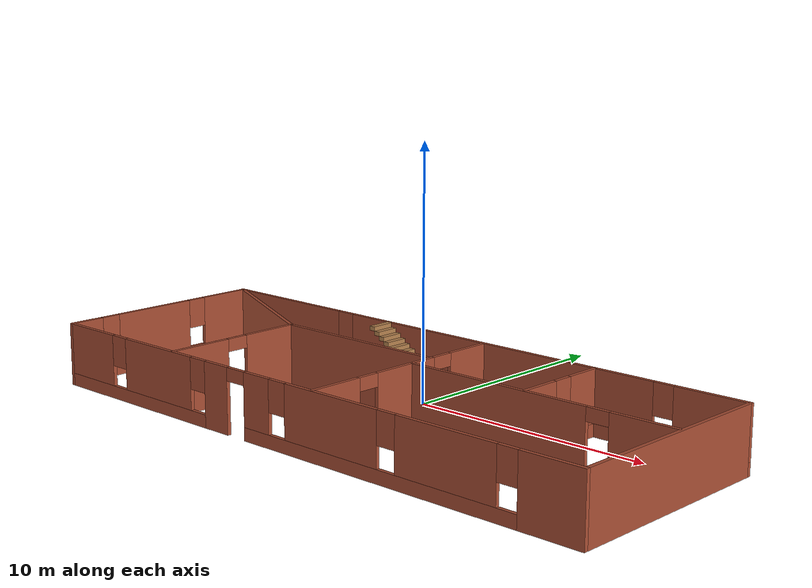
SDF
<?xml version='1.0'?>
<sdf version='1.6'>
  <model name='house'>
    <pose frame=''>0.670228 -3.17375 0 0 -0 0</pose>
    <link name='Stairs_0'>
      <visual name='Stairs_0_Visual_0'>
        <pose frame=''>-0.047967 3.88961 0.083333 0 -0 -1.5708</pose>
        <geometry>
          <box>
            <size>1 0.252106 0.166667</size>
          </box>
        </geometry>
        <material>
          <script>
            <uri>file://media/materials/scripts/gazebo.material</uri>
            <name>Gazebo/Wood</name>
          </script>
          <ambient>1 1 1 1</ambient>
        </material>
        <meta>
          <layer>0</layer>
        </meta>
      </visual>
      <collision name='Stairs_0_Collision_0'>
        <geometry>
          <box>
            <size>1 0.252106 0.166667</size>
          </box>
        </geometry>
        <pose frame=''>-0.047967 3.88961 0.083333 0 -0 -1.5708</pose>
      </collision>
      <visual name='Stairs_0_Visual_1'>
        <pose frame=''>-0.300073 3.88961 0.25 0 -0 -1.5708</pose>
        <geometry>
          <box>
            <size>1 0.252106 0.166667</size>
          </box>
        </geometry>
        <material>
          <script>
            <uri>file://media/materials/scripts/gazebo.material</uri>
            <name>Gazebo/Wood</name>
          </script>
          <ambient>1 1 1 1</ambient>
        </material>
        <meta>
          <layer>0</layer>
        </meta>
      </visual>
      <collision name='Stairs_0_Collision_1'>
        <geometry>
          <box>
            <size>1 0.252106 0.166667</size>
          </box>
        </geometry>
        <pose frame=''>-0.300073 3.88961 0.25 0 -0 -1.5708</pose>
      </collision>
      <visual name='Stairs_0_Visual_2'>
        <pose frame=''>-0.552179 3.88961 0.416667 0 -0 -1.5708</pose>
        <geometry>
          <box>
            <size>1 0.252106 0.166667</size>
          </box>
        </geometry>
        <material>
          <script>
            <uri>file://media/materials/scripts/gazebo.material</uri>
            <name>Gazebo/Wood</name>
          </script>
          <ambient>1 1 1 1</ambient>
        </material>
        <meta>
          <layer>0</layer>
        </meta>
      </visual>
      <collision name='Stairs_0_Collision_2'>
        <geometry>
          <box>
            <size>1 0.252106 0.166667</size>
          </box>
        </geometry>
        <pose frame=''>-0.552179 3.88961 0.416667 0 -0 -1.5708</pose>
      </collision>
      <visual name='Stairs_0_Visual_3'>
        <pose frame=''>-0.804285 3.88961 0.583333 0 -0 -1.5708</pose>
        <geometry>
          <box>
            <size>1 0.252106 0.166667</size>
          </box>
        </geometry>
        <material>
          <script>
            <uri>file://media/materials/scripts/gazebo.material</uri>
            <name>Gazebo/Wood</name>
          </script>
          <ambient>1 1 1 1</ambient>
        </material>
        <meta>
          <layer>0</layer>
        </meta>
      </visual>
      <collision name='Stairs_0_Collision_3'>
        <geometry>
          <box>
            <size>1 0.252106 0.166667</size>
          </box>
        </geometry>
        <pose frame=''>-0.804285 3.88961 0.583333 0 -0 -1.5708</pose>
      </collision>
      <visual name='Stairs_0_Visual_4'>
        <pose frame=''>-1.05639 3.88961 0.75 0 -0 -1.5708</pose>
        <geometry>
          <box>
            <size>1 0.252106 0.166667</size>
          </box>
        </geometry>
        <material>
          <script>
            <uri>file://media/materials/scripts/gazebo.material</uri>
            <name>Gazebo/Wood</name>
          </script>
          <ambient>1 1 1 1</ambient>
        </material>
        <meta>
          <layer>0</layer>
        </meta>
      </visual>
      <collision name='Stairs_0_Collision_4'>
        <geometry>
          <box>
            <size>1 0.252106 0.166667</size>
          </box>
        </geometry>
        <pose frame=''>-1.05639 3.88961 0.75 0 -0 -1.5708</pose>
      </collision>
      <visual name='Stairs_0_Visual_5'>
        <pose frame=''>-1.3085 3.88961 0.916667 0 -0 -1.5708</pose>
        <geometry>
          <box>
            <size>1 0.252106 0.166667</size>
          </box>
        </geometry>
        <material>
          <script>
            <uri>file://media/materials/scripts/gazebo.material</uri>
            <name>Gazebo/Wood</name>
          </script>
          <ambient>1 1 1 1</ambient>
        </material>
        <meta>
          <layer>0</layer>
        </meta>
      </visual>
      <collision name='Stairs_0_Collision_5'>
        <geometry>
          <box>
            <size>1 0.252106 0.166667</size>
          </box>
        </geometry>
        <pose frame=''>-1.3085 3.88961 0.916667 0 -0 -1.5708</pose>
      </collision>
      <visual name='Stairs_0_Visual_6'>
        <pose frame=''>-1.5606 3.88961 1.08333 0 -0 -1.5708</pose>
        <geometry>
          <box>
            <size>1 0.252106 0.166667</size>
          </box>
        </geometry>
        <material>
          <script>
            <uri>file://media/materials/scripts/gazebo.material</uri>
            <name>Gazebo/Wood</name>
          </script>
          <ambient>1 1 1 1</ambient>
        </material>
        <meta>
          <layer>0</layer>
        </meta>
      </visual>
      <collision name='Stairs_0_Collision_6'>
        <geometry>
          <box>
            <size>1 0.252106 0.166667</size>
          </box>
        </geometry>
        <pose frame=''>-1.5606 3.88961 1.08333 0 -0 -1.5708</pose>
      </collision>
      <visual name='Stairs_0_Visual_7'>
        <pose frame=''>-1.81271 3.88961 1.25 0 -0 -1.5708</pose>
        <geometry>
          <box>
            <size>1 0.252106 0.166667</size>
          </box>
        </geometry>
        <material>
          <script>
            <uri>file://media/materials/scripts/gazebo.material</uri>
            <name>Gazebo/Wood</name>
          </script>
          <ambient>1 1 1 1</ambient>
        </material>
        <meta>
          <layer>0</layer>
        </meta>
      </visual>
      <collision name='Stairs_0_Collision_7'>
        <geometry>
          <box>
            <size>1 0.252106 0.166667</size>
          </box>
        </geometry>
        <pose frame=''>-1.81271 3.88961 1.25 0 -0 -1.5708</pose>
      </collision>
      <visual name='Stairs_0_Visual_8'>
        <pose frame=''>-2.06482 3.88961 1.41667 0 -0 -1.5708</pose>
        <geometry>
          <box>
            <size>1 0.252106 0.166667</size>
          </box>
        </geometry>
        <material>
          <script>
            <uri>file://media/materials/scripts/gazebo.material</uri>
            <name>Gazebo/Wood</name>
          </script>
          <ambient>1 1 1 1</ambient>
        </material>
        <meta>
          <layer>0</layer>
        </meta>
      </visual>
      <collision name='Stairs_0_Collision_8'>
        <geometry>
          <box>
            <size>1 0.252106 0.166667</size>
          </box>
        </geometry>
        <pose frame=''>-2.06482 3.88961 1.41667 0 -0 -1.5708</pose>
      </collision>
      <visual name='Stairs_0_Visual_9'>
        <pose frame=''>-2.31692 3.88961 1.58333 0 -0 -1.5708</pose>
        <geometry>
          <box>
            <size>1 0.252106 0.166667</size>
          </box>
        </geometry>
        <material>
          <script>
            <uri>file://media/materials/scripts/gazebo.material</uri>
            <name>Gazebo/Wood</name>
          </script>
          <ambient>1 1 1 1</ambient>
        </material>
        <meta>
          <layer>0</layer>
        </meta>
      </visual>
      <collision name='Stairs_0_Collision_9'>
        <geometry>
          <box>
            <size>1 0.252106 0.166667</size>
          </box>
        </geometry>
        <pose frame=''>-2.31692 3.88961 1.58333 0 -0 -1.5708</pose>
      </collision>
      <visual name='Stairs_0_Visual_10'>
        <pose frame=''>-2.56903 3.88961 1.75 0 -0 -1.5708</pose>
        <geometry>
          <box>
            <size>1 0.252106 0.166667</size>
          </box>
        </geometry>
        <material>
          <script>
            <uri>file://media/materials/scripts/gazebo.material</uri>
            <name>Gazebo/Wood</name>
          </script>
          <ambient>1 1 1 1</ambient>
        </material>
        <meta>
          <layer>0</layer>
        </meta>
      </visual>
      <collision name='Stairs_0_Collision_10'>
        <geometry>
          <box>
            <size>1 0.252106 0.166667</size>
          </box>
        </geometry>
        <pose frame=''>-2.56903 3.88961 1.75 0 -0 -1.5708</pose>
      </collision>
      <visual name='Stairs_0_Visual_11'>
        <pose frame=''>-2.82113 3.88961 1.91667 0 -0 -1.5708</pose>
        <geometry>
          <box>
            <size>1 0.252106 0.166667</size>
          </box>
        </geometry>
        <material>
          <script>
            <uri>file://media/materials/scripts/gazebo.material</uri>
            <name>Gazebo/Wood</name>
          </script>
          <ambient>1 1 1 1</ambient>
        </material>
        <meta>
          <layer>0</layer>
        </meta>
      </visual>
      <collision name='Stairs_0_Collision_11'>
        <geometry>
          <box>
            <size>1 0.252106 0.166667</size>
          </box>
        </geometry>
        <pose frame=''>-2.82113 3.88961 1.91667 0 -0 -1.5708</pose>
      </collision>
      <visual name='Stairs_0_Visual_12'>
        <pose frame=''>-3.07324 3.88961 2.08333 0 -0 -1.5708</pose>
        <geometry>
          <box>
            <size>1 0.252106 0.166667</size>
          </box>
        </geometry>
        <material>
          <script>
            <uri>file://media/materials/scripts/gazebo.material</uri>
            <name>Gazebo/Wood</name>
          </script>
          <ambient>1 1 1 1</ambient>
        </material>
        <meta>
          <layer>0</layer>
        </meta>
      </visual>
      <collision name='Stairs_0_Collision_12'>
        <geometry>
          <box>
            <size>1 0.252106 0.166667</size>
          </box>
        </geometry>
        <pose frame=''>-3.07324 3.88961 2.08333 0 -0 -1.5708</pose>
      </collision>
      <visual name='Stairs_0_Visual_13'>
        <pose frame=''>-3.32535 3.88961 2.25 0 -0 -1.5708</pose>
        <geometry>
          <box>
            <size>1 0.252106 0.166667</size>
          </box>
        </geometry>
        <material>
          <script>
            <uri>file://media/materials/scripts/gazebo.material</uri>
            <name>Gazebo/Wood</name>
          </script>
          <ambient>1 1 1 1</ambient>
        </material>
        <meta>
          <layer>0</layer>
        </meta>
      </visual>
      <collision name='Stairs_0_Collision_13'>
        <geometry>
          <box>
            <size>1 0.252106 0.166667</size>
          </box>
        </geometry>
        <pose frame=''>-3.32535 3.88961 2.25 0 -0 -1.5708</pose>
      </collision>
      <visual name='Stairs_0_Visual_14'>
        <pose frame=''>-3.57745 3.88961 2.41667 0 -0 -1.5708</pose>
        <geometry>
          <box>
            <size>1 0.252106 0.166667</size>
          </box>
        </geometry>
        <material>
          <script>
            <uri>file://media/materials/scripts/gazebo.material</uri>
            <name>Gazebo/Wood</name>
          </script>
          <ambient>1 1 1 1</ambient>
        </material>
        <meta>
          <layer>0</layer>
        </meta>
      </visual>
      <collision name='Stairs_0_Collision_14'>
        <geometry>
          <box>
            <size>1 0.252106 0.166667</size>
          </box>
        </geometry>
        <pose frame=''>-3.57745 3.88961 2.41667 0 -0 -1.5708</pose>
      </collision>
    </link>
    <link name='Wall_0'>
      <pose frame=''>0.012438 4.41256 0 0 -0 0</pose>
      <visual name='Wall_0_Visual_0'>
        <pose frame=''>-9.46444 0 1.25 0 -0 0</pose>
        <geometry>
          <box>
            <size>6.07112 0.15 2.5</size>
          </box>
        </geometry>
        <material>
          <script>
            <uri>file://media/materials/scripts/gazebo.material</uri>
            <name>Gazebo/Bricks</name>
          </script>
          <ambient>1 0.764706 0.305882 1</ambient>
        </material>
        <meta>
          <layer>0</layer>
        </meta>
      </visual>
      <collision name='Wall_0_Collision_0'>
        <geometry>
          <box>
            <size>6.07112 0.15 2.5</size>
          </box>
        </geometry>
        <pose frame=''>-9.46444 0 1.25 0 -0 0</pose>
      </collision>
      <visual name='Wall_0_Visual_1'>
        <pose frame=''>3.03556 0 0.25 0 -0 0</pose>
        <geometry>
          <box>
            <size>18.9289 0.15 0.5</size>
          </box>
        </geometry>
        <material>
          <script>
            <uri>file://media/materials/scripts/gazebo.material</uri>
            <name>Gazebo/Bricks</name>
          </script>
          <ambient>1 0.764706 0.305882 1</ambient>
        </material>
        <meta>
          <layer>0</layer>
        </meta>
      </visual>
      <collision name='Wall_0_Collision_1'>
        <geometry>
          <box>
            <size>18.9289 0.15 0.5</size>
          </box>
        </geometry>
        <pose frame=''>3.03556 0 0.25 0 -0 0</pose>
      </collision>
      <visual name='Wall_0_Visual_2'>
        <pose frame=''>1.57405 0 1.5 0 -0 0</pose>
        <geometry>
          <box>
            <size>14.4059 0.15 2</size>
          </box>
        </geometry>
        <material>
          <script>
            <uri>file://media/materials/scripts/gazebo.material</uri>
            <name>Gazebo/Bricks</name>
          </script>
          <ambient>1 0.764706 0.305882 1</ambient>
        </material>
        <meta>
          <layer>0</layer>
        </meta>
      </visual>
      <collision name='Wall_0_Collision_2'>
        <geometry>
          <box>
            <size>14.4059 0.15 2</size>
          </box>
        </geometry>
        <pose frame=''>1.57405 0 1.5 0 -0 0</pose>
      </collision>
      <visual name='Wall_0_Visual_3'>
        <pose frame=''>11.0385 0 1.5 0 -0 0</pose>
        <geometry>
          <box>
            <size>2.92302 0.15 2</size>
          </box>
        </geometry>
        <material>
          <script>
            <uri>file://media/materials/scripts/gazebo.material</uri>
            <name>Gazebo/Bricks</name>
          </script>
          <ambient>1 0.764706 0.305882 1</ambient>
        </material>
        <meta>
          <layer>0</layer>
        </meta>
      </visual>
      <collision name='Wall_0_Collision_3'>
        <geometry>
          <box>
            <size>2.92302 0.15 2</size>
          </box>
        </geometry>
        <pose frame=''>11.0385 0 1.5 0 -0 0</pose>
      </collision>
      <visual name='Wall_0_Visual_4'>
        <pose frame=''>-6.02888 0 1.9 0 -0 0</pose>
        <geometry>
          <box>
            <size>0.8 0.15 1.2</size>
          </box>
        </geometry>
        <material>
          <script>
            <uri>file://media/materials/scripts/gazebo.material</uri>
            <name>Gazebo/Bricks</name>
          </script>
          <ambient>1 0.764706 0.305882 1</ambient>
        </material>
        <meta>
          <layer>0</layer>
        </meta>
      </visual>
      <collision name='Wall_0_Collision_4'>
        <geometry>
          <box>
            <size>0.8 0.15 1.2</size>
          </box>
        </geometry>
        <pose frame=''>-6.02888 0 1.9 0 -0 0</pose>
      </collision>
      <visual name='Wall_0_Visual_5'>
        <pose frame=''>9.17698 0 1.9 0 -0 0</pose>
        <geometry>
          <box>
            <size>0.8 0.15 1.2</size>
          </box>
        </geometry>
        <material>
          <script>
            <uri>file://media/materials/scripts/gazebo.material</uri>
            <name>Gazebo/Bricks</name>
          </script>
          <ambient>1 0.764706 0.305882 1</ambient>
        </material>
        <meta>
          <layer>0</layer>
        </meta>
      </visual>
      <collision name='Wall_0_Collision_5'>
        <geometry>
          <box>
            <size>0.8 0.15 1.2</size>
          </box>
        </geometry>
        <pose frame=''>9.17698 0 1.9 0 -0 0</pose>
      </collision>
    </link>
    <link name='Wall_1'>
      <collision name='Wall_1_Collision'>
        <geometry>
          <box>
            <size>9 0.15 2.5</size>
          </box>
        </geometry>
        <pose frame=''>0 0 1.25 0 -0 0</pose>
      </collision>
      <visual name='Wall_1_Visual'>
        <pose frame=''>0 0 1.25 0 -0 0</pose>
        <geometry>
          <box>
            <size>9 0.15 2.5</size>
          </box>
        </geometry>
        <material>
          <script>
            <uri>file://media/materials/scripts/gazebo.material</uri>
            <name>Gazebo/Bricks</name>
          </script>
          <ambient>0.996078 0.47451 0.0196078 1</ambient>
        </material>
        <meta>
          <layer>0</layer>
        </meta>
      </visual>
      <pose frame=''>12.4374 -0.012438 0 0 0 -1.5708</pose>
    </link>
    <link name='Wall_18'>
      <pose frame=''>6.31317 2.43553 0 0 -0 1.5708</pose>
      <visual name='Wall_18_Visual_0'>
        <pose frame=''>-1.15682 0 1.25 0 -0 0</pose>
        <geometry>
          <box>
            <size>1.68636 0.15 2.5</size>
          </box>
        </geometry>
        <material>
          <script>
            <uri>file://media/materials/scripts/gazebo.material</uri>
            <name>Gazebo/Bricks</name>
          </script>
          <ambient>1 0.764706 0.305882 1</ambient>
        </material>
        <meta>
          <layer>0</layer>
        </meta>
      </visual>
      <collision name='Wall_18_Collision_0'>
        <geometry>
          <box>
            <size>1.68636 0.15 2.5</size>
          </box>
        </geometry>
        <pose frame=''>-1.15682 0 1.25 0 -0 0</pose>
      </collision>
      <visual name='Wall_18_Visual_1'>
        <pose frame=''>0.843179 0 0.25 0 -0 0</pose>
        <geometry>
          <box>
            <size>2.31364 0.15 0.5</size>
          </box>
        </geometry>
        <material>
          <script>
            <uri>file://media/materials/scripts/gazebo.material</uri>
            <name>Gazebo/Bricks</name>
          </script>
          <ambient>1 0.764706 0.305882 1</ambient>
        </material>
        <meta>
          <layer>0</layer>
        </meta>
      </visual>
      <collision name='Wall_18_Collision_1'>
        <geometry>
          <box>
            <size>2.31364 0.15 0.5</size>
          </box>
        </geometry>
        <pose frame=''>0.843179 0 0.25 0 -0 0</pose>
      </collision>
      <visual name='Wall_18_Visual_2'>
        <pose frame=''>1.24318 0 1.5 0 -0 0</pose>
        <geometry>
          <box>
            <size>1.51364 0.15 2</size>
          </box>
        </geometry>
        <material>
          <script>
            <uri>file://media/materials/scripts/gazebo.material</uri>
            <name>Gazebo/Bricks</name>
          </script>
          <ambient>1 0.764706 0.305882 1</ambient>
        </material>
        <meta>
          <layer>0</layer>
        </meta>
      </visual>
      <collision name='Wall_18_Collision_2'>
        <geometry>
          <box>
            <size>1.51364 0.15 2</size>
          </box>
        </geometry>
        <pose frame=''>1.24318 0 1.5 0 -0 0</pose>
      </collision>
      <visual name='Wall_18_Visual_3'>
        <pose frame=''>0.086357 0 1.9 0 -0 0</pose>
        <geometry>
          <box>
            <size>0.8 0.15 1.2</size>
          </box>
        </geometry>
        <material>
          <script>
            <uri>file://media/materials/scripts/gazebo.material</uri>
            <name>Gazebo/Bricks</name>
          </script>
          <ambient>1 0.764706 0.305882 1</ambient>
        </material>
        <meta>
          <layer>0</layer>
        </meta>
      </visual>
      <collision name='Wall_18_Collision_3'>
        <geometry>
          <box>
            <size>0.8 0.15 1.2</size>
          </box>
        </geometry>
        <pose frame=''>0.086357 0 1.9 0 -0 0</pose>
      </collision>
    </link>
    <link name='Wall_2'>
      <pose frame=''>0.012438 -4.43744 0 0 -0 3.14159</pose>
      <visual name='Wall_2_Visual_0'>
        <pose frame=''>-11.2698 0 1.25 0 -0 0</pose>
        <geometry>
          <box>
            <size>2.46041 0.15 2.5</size>
          </box>
        </geometry>
        <material>
          <script>
            <uri>file://media/materials/scripts/gazebo.material</uri>
            <name>Gazebo/Bricks</name>
          </script>
          <ambient>0.996078 0.47451 0.0196078 1</ambient>
        </material>
        <meta>
          <layer>0</layer>
        </meta>
      </visual>
      <collision name='Wall_2_Collision_0'>
        <geometry>
          <box>
            <size>2.46041 0.15 2.5</size>
          </box>
        </geometry>
        <pose frame=''>-11.2698 0 1.25 0 -0 0</pose>
      </collision>
      <visual name='Wall_2_Visual_1'>
        <pose frame=''>3.6302 0 1.25 0 -0 0</pose>
        <geometry>
          <box>
            <size>1.2217 0.15 2.5</size>
          </box>
        </geometry>
        <material>
          <script>
            <uri>file://media/materials/scripts/gazebo.material</uri>
            <name>Gazebo/Bricks</name>
          </script>
          <ambient>0.996078 0.47451 0.0196078 1</ambient>
        </material>
        <meta>
          <layer>0</layer>
        </meta>
      </visual>
      <collision name='Wall_2_Collision_1'>
        <geometry>
          <box>
            <size>1.2217 0.15 2.5</size>
          </box>
        </geometry>
        <pose frame=''>3.6302 0 1.25 0 -0 0</pose>
      </collision>
      <visual name='Wall_2_Visual_2'>
        <pose frame=''>-3.96012 0 0.25 0 -0 0</pose>
        <geometry>
          <box>
            <size>12.1589 0.15 0.5</size>
          </box>
        </geometry>
        <material>
          <script>
            <uri>file://media/materials/scripts/gazebo.material</uri>
            <name>Gazebo/Bricks</name>
          </script>
          <ambient>0.996078 0.47451 0.0196078 1</ambient>
        </material>
        <meta>
          <layer>0</layer>
        </meta>
      </visual>
      <collision name='Wall_2_Collision_2'>
        <geometry>
          <box>
            <size>12.1589 0.15 0.5</size>
          </box>
        </geometry>
        <pose frame=''>-3.96012 0 0.25 0 -0 0</pose>
      </collision>
      <visual name='Wall_2_Visual_3'>
        <pose frame=''>8.37052 0 0.25 0 -0 0</pose>
        <geometry>
          <box>
            <size>8.25895 0.15 0.5</size>
          </box>
        </geometry>
        <material>
          <script>
            <uri>file://media/materials/scripts/gazebo.material</uri>
            <name>Gazebo/Bricks</name>
          </script>
          <ambient>0.996078 0.47451 0.0196078 1</ambient>
        </material>
        <meta>
          <layer>0</layer>
        </meta>
      </visual>
      <collision name='Wall_2_Collision_3'>
        <geometry>
          <box>
            <size>8.25895 0.15 0.5</size>
          </box>
        </geometry>
        <pose frame=''>8.37052 0 0.25 0 -0 0</pose>
      </collision>
      <visual name='Wall_2_Visual_4'>
        <pose frame=''>-7.16562 0 1.5 0 -0 0</pose>
        <geometry>
          <box>
            <size>4.14794 0.15 2</size>
          </box>
        </geometry>
        <material>
          <script>
            <uri>file://media/materials/scripts/gazebo.material</uri>
            <name>Gazebo/Bricks</name>
          </script>
          <ambient>0.996078 0.47451 0.0196078 1</ambient>
        </material>
        <meta>
          <layer>0</layer>
        </meta>
      </visual>
      <collision name='Wall_2_Collision_4'>
        <geometry>
          <box>
            <size>4.14794 0.15 2</size>
          </box>
        </geometry>
        <pose frame=''>-7.16562 0 1.5 0 -0 0</pose>
      </collision>
      <visual name='Wall_2_Visual_5'>
        <pose frame=''>-2.12717 0 1.5 0 -0 0</pose>
        <geometry>
          <box>
            <size>4.32896 0.15 2</size>
          </box>
        </geometry>
        <material>
          <script>
            <uri>file://media/materials/scripts/gazebo.material</uri>
            <name>Gazebo/Bricks</name>
          </script>
          <ambient>0.996078 0.47451 0.0196078 1</ambient>
        </material>
        <meta>
          <layer>0</layer>
        </meta>
      </visual>
      <collision name='Wall_2_Collision_5'>
        <geometry>
          <box>
            <size>4.32896 0.15 2</size>
          </box>
        </geometry>
        <pose frame=''>-2.12717 0 1.5 0 -0 0</pose>
      </collision>
      <visual name='Wall_2_Visual_6'>
        <pose frame=''>1.47833 0 1.5 0 -0 0</pose>
        <geometry>
          <box>
            <size>1.28204 0.15 2</size>
          </box>
        </geometry>
        <material>
          <script>
            <uri>file://media/materials/scripts/gazebo.material</uri>
            <name>Gazebo/Bricks</name>
          </script>
          <ambient>0.996078 0.47451 0.0196078 1</ambient>
        </material>
        <meta>
          <layer>0</layer>
        </meta>
      </visual>
      <collision name='Wall_2_Collision_6'>
        <geometry>
          <box>
            <size>1.28204 0.15 2</size>
          </box>
        </geometry>
        <pose frame=''>1.47833 0 1.5 0 -0 0</pose>
      </collision>
      <visual name='Wall_2_Visual_7'>
        <pose frame=''>1.47833 0 1.5 0 -0 0</pose>
        <geometry>
          <box>
            <size>1.28204 0.15 2</size>
          </box>
        </geometry>
        <material>
          <script>
            <uri>file://media/materials/scripts/gazebo.material</uri>
            <name>Gazebo/Bricks</name>
          </script>
          <ambient>0.996078 0.47451 0.0196078 1</ambient>
        </material>
        <meta>
          <layer>0</layer>
        </meta>
      </visual>
      <collision name='Wall_2_Collision_7'>
        <geometry>
          <box>
            <size>1.28204 0.15 2</size>
          </box>
        </geometry>
        <pose frame=''>1.47833 0 1.5 0 -0 0</pose>
      </collision>
      <visual name='Wall_2_Visual_8'>
        <pose frame=''>6.97422 0 1.5 0 -0 0</pose>
        <geometry>
          <box>
            <size>3.86635 0.15 2</size>
          </box>
        </geometry>
        <material>
          <script>
            <uri>file://media/materials/scripts/gazebo.material</uri>
            <name>Gazebo/Bricks</name>
          </script>
          <ambient>0.996078 0.47451 0.0196078 1</ambient>
        </material>
        <meta>
          <layer>0</layer>
        </meta>
      </visual>
      <collision name='Wall_2_Collision_8'>
        <geometry>
          <box>
            <size>3.86635 0.15 2</size>
          </box>
        </geometry>
        <pose frame=''>6.97422 0 1.5 0 -0 0</pose>
      </collision>
      <visual name='Wall_2_Visual_9'>
        <pose frame=''>11.1037 0 1.5 0 -0 0</pose>
        <geometry>
          <box>
            <size>2.7926 0.15 2</size>
          </box>
        </geometry>
        <material>
          <script>
            <uri>file://media/materials/scripts/gazebo.material</uri>
            <name>Gazebo/Bricks</name>
          </script>
          <ambient>0.996078 0.47451 0.0196078 1</ambient>
        </material>
        <meta>
          <layer>0</layer>
        </meta>
      </visual>
      <collision name='Wall_2_Collision_9'>
        <geometry>
          <box>
            <size>2.7926 0.15 2</size>
          </box>
        </geometry>
        <pose frame=''>11.1037 0 1.5 0 -0 0</pose>
      </collision>
      <visual name='Wall_2_Visual_10'>
        <pose frame=''>-9.63959 0 1.9 0 -0 0</pose>
        <geometry>
          <box>
            <size>0.8 0.15 1.2</size>
          </box>
        </geometry>
        <material>
          <script>
            <uri>file://media/materials/scripts/gazebo.material</uri>
            <name>Gazebo/Bricks</name>
          </script>
          <ambient>0.996078 0.47451 0.0196078 1</ambient>
        </material>
        <meta>
          <layer>0</layer>
        </meta>
      </visual>
      <collision name='Wall_2_Collision_10'>
        <geometry>
          <box>
            <size>0.8 0.15 1.2</size>
          </box>
        </geometry>
        <pose frame=''>-9.63959 0 1.9 0 -0 0</pose>
      </collision>
      <visual name='Wall_2_Visual_11'>
        <pose frame=''>4.64105 0 1.9 0 -0 0</pose>
        <geometry>
          <box>
            <size>0.8 0.15 1.2</size>
          </box>
        </geometry>
        <material>
          <script>
            <uri>file://media/materials/scripts/gazebo.material</uri>
            <name>Gazebo/Bricks</name>
          </script>
          <ambient>0.996078 0.47451 0.0196078 1</ambient>
        </material>
        <meta>
          <layer>0</layer>
        </meta>
      </visual>
      <collision name='Wall_2_Collision_11'>
        <geometry>
          <box>
            <size>0.8 0.15 1.2</size>
          </box>
        </geometry>
        <pose frame=''>4.64105 0 1.9 0 -0 0</pose>
      </collision>
      <visual name='Wall_2_Visual_12'>
        <pose frame=''>-4.69165 0 1.9 0 -0 0</pose>
        <geometry>
          <box>
            <size>0.8 0.15 1.2</size>
          </box>
        </geometry>
        <material>
          <script>
            <uri>file://media/materials/scripts/gazebo.material</uri>
            <name>Gazebo/Bricks</name>
          </script>
          <ambient>0.996078 0.47451 0.0196078 1</ambient>
        </material>
        <meta>
          <layer>0</layer>
        </meta>
      </visual>
      <collision name='Wall_2_Collision_12'>
        <geometry>
          <box>
            <size>0.8 0.15 1.2</size>
          </box>
        </geometry>
        <pose frame=''>-4.69165 0 1.9 0 -0 0</pose>
      </collision>
      <visual name='Wall_2_Visual_13'>
        <pose frame=''>0.437311 0 1.9 0 -0 0</pose>
        <geometry>
          <box>
            <size>0.8 0.15 1.2</size>
          </box>
        </geometry>
        <material>
          <script>
            <uri>file://media/materials/scripts/gazebo.material</uri>
            <name>Gazebo/Bricks</name>
          </script>
          <ambient>0.996078 0.47451 0.0196078 1</ambient>
        </material>
        <meta>
          <layer>0</layer>
        </meta>
      </visual>
      <collision name='Wall_2_Collision_13'>
        <geometry>
          <box>
            <size>0.8 0.15 1.2</size>
          </box>
        </geometry>
        <pose frame=''>0.437311 0 1.9 0 -0 0</pose>
      </collision>
      <visual name='Wall_2_Visual_14'>
        <pose frame=''>9.3074 0 1.9 0 -0 0</pose>
        <geometry>
          <box>
            <size>0.8 0.15 1.2</size>
          </box>
        </geometry>
        <material>
          <script>
            <uri>file://media/materials/scripts/gazebo.material</uri>
            <name>Gazebo/Bricks</name>
          </script>
          <ambient>0.996078 0.47451 0.0196078 1</ambient>
        </material>
        <meta>
          <layer>0</layer>
        </meta>
      </visual>
      <collision name='Wall_2_Collision_14'>
        <geometry>
          <box>
            <size>0.8 0.15 1.2</size>
          </box>
        </geometry>
        <pose frame=''>9.3074 0 1.9 0 -0 0</pose>
      </collision>
      <visual name='Wall_2_Visual_15'>
        <pose frame=''>2.56935 0 2.25 0 -0 0</pose>
        <geometry>
          <box>
            <size>0.9 0.15 0.5</size>
          </box>
        </geometry>
        <material>
          <script>
            <uri>file://media/materials/scripts/gazebo.material</uri>
            <name>Gazebo/Bricks</name>
          </script>
          <ambient>0.996078 0.47451 0.0196078 1</ambient>
        </material>
        <meta>
          <layer>0</layer>
        </meta>
      </visual>
      <collision name='Wall_2_Collision_15'>
        <geometry>
          <box>
            <size>0.9 0.15 0.5</size>
          </box>
        </geometry>
        <pose frame=''>2.56935 0 2.25 0 -0 0</pose>
      </collision>
      <visual name='Wall_2_Visual_16'>
        <pose frame=''>2.56935 0 2.25 0 -0 0</pose>
        <geometry>
          <box>
            <size>0.9 0.15 0.5</size>
          </box>
        </geometry>
        <material>
          <script>
            <uri>file://media/materials/scripts/gazebo.material</uri>
            <name>Gazebo/Bricks</name>
          </script>
          <ambient>0.996078 0.47451 0.0196078 1</ambient>
        </material>
        <meta>
          <layer>0</layer>
        </meta>
      </visual>
      <collision name='Wall_2_Collision_16'>
        <geometry>
          <box>
            <size>0.9 0.15 0.5</size>
          </box>
        </geometry>
        <pose frame=''>2.56935 0 2.25 0 -0 0</pose>
      </collision>
    </link>
    <link name='Wall_20'>
      <pose frame=''>1.24455 2.37782 0 0 -0 1.5708</pose>
      <visual name='Wall_20_Visual_0'>
        <pose frame=''>-1.40438 0 1.25 0 -0 0</pose>
        <geometry>
          <box>
            <size>1.19123 0.15 2.5</size>
          </box>
        </geometry>
        <material>
          <script>
            <uri>file://media/materials/scripts/gazebo.material</uri>
            <name>Gazebo/Bricks</name>
          </script>
          <ambient>1 0.764706 0.305882 1</ambient>
        </material>
        <meta>
          <layer>0</layer>
        </meta>
      </visual>
      <collision name='Wall_20_Collision_0'>
        <geometry>
          <box>
            <size>1.19123 0.15 2.5</size>
          </box>
        </geometry>
        <pose frame=''>-1.40438 0 1.25 0 -0 0</pose>
      </collision>
      <visual name='Wall_20_Visual_1'>
        <pose frame=''>1.04561 0 1.25 0 -0 0</pose>
        <geometry>
          <box>
            <size>1.90877 0.15 2.5</size>
          </box>
        </geometry>
        <material>
          <script>
            <uri>file://media/materials/scripts/gazebo.material</uri>
            <name>Gazebo/Bricks</name>
          </script>
          <ambient>1 0.764706 0.305882 1</ambient>
        </material>
        <meta>
          <layer>0</layer>
        </meta>
      </visual>
      <collision name='Wall_20_Collision_1'>
        <geometry>
          <box>
            <size>1.90877 0.15 2.5</size>
          </box>
        </geometry>
        <pose frame=''>1.04561 0 1.25 0 -0 0</pose>
      </collision>
      <visual name='Wall_20_Visual_2'>
        <pose frame=''>-0.358771 0 2.25 0 -0 0</pose>
        <geometry>
          <box>
            <size>0.9 0.15 0.5</size>
          </box>
        </geometry>
        <material>
          <script>
            <uri>file://media/materials/scripts/gazebo.material</uri>
            <name>Gazebo/Bricks</name>
          </script>
          <ambient>1 0.764706 0.305882 1</ambient>
        </material>
        <meta>
          <layer>0</layer>
        </meta>
      </visual>
      <collision name='Wall_20_Collision_2'>
        <geometry>
          <box>
            <size>0.9 0.15 0.5</size>
          </box>
        </geometry>
        <pose frame=''>-0.358771 0 2.25 0 -0 0</pose>
      </collision>
    </link>
    <link name='Wall_22'>
      <pose frame=''>-6.11701 -1.4923 0 0 -0 1.5708</pose>
      <visual name='Wall_22_Visual_0'>
        <pose frame=''>-1.66892 0 1.25 0 -0 0</pose>
        <geometry>
          <box>
            <size>2.66215 0.15 2.5</size>
          </box>
        </geometry>
        <material>
          <script>
            <uri>file://media/materials/scripts/gazebo.material</uri>
            <name>Gazebo/Bricks</name>
          </script>
          <ambient>1 0.764706 0.305882 1</ambient>
        </material>
        <meta>
          <layer>0</layer>
        </meta>
      </visual>
      <collision name='Wall_22_Collision_0'>
        <geometry>
          <box>
            <size>2.66215 0.15 2.5</size>
          </box>
        </geometry>
        <pose frame=''>-1.66892 0 1.25 0 -0 0</pose>
      </collision>
      <visual name='Wall_22_Visual_1'>
        <pose frame=''>1.78107 0 1.25 0 -0 0</pose>
        <geometry>
          <box>
            <size>2.43785 0.15 2.5</size>
          </box>
        </geometry>
        <material>
          <script>
            <uri>file://media/materials/scripts/gazebo.material</uri>
            <name>Gazebo/Bricks</name>
          </script>
          <ambient>1 0.764706 0.305882 1</ambient>
        </material>
        <meta>
          <layer>0</layer>
        </meta>
      </visual>
      <collision name='Wall_22_Collision_1'>
        <geometry>
          <box>
            <size>2.43785 0.15 2.5</size>
          </box>
        </geometry>
        <pose frame=''>1.78107 0 1.25 0 -0 0</pose>
      </collision>
      <visual name='Wall_22_Visual_2'>
        <pose frame=''>0.11215 0 2.25 0 -0 0</pose>
        <geometry>
          <box>
            <size>0.9 0.15 0.5</size>
          </box>
        </geometry>
        <material>
          <script>
            <uri>file://media/materials/scripts/gazebo.material</uri>
            <name>Gazebo/Bricks</name>
          </script>
          <ambient>1 0.764706 0.305882 1</ambient>
        </material>
        <meta>
          <layer>0</layer>
        </meta>
      </visual>
      <collision name='Wall_22_Collision_2'>
        <geometry>
          <box>
            <size>0.9 0.15 0.5</size>
          </box>
        </geometry>
        <pose frame=''>0.11215 0 2.25 0 -0 0</pose>
      </collision>
    </link>
    <link name='Wall_23'>
      <collision name='Wall_23_Collision'>
        <geometry>
          <box>
            <size>7.5 0.15 2.5</size>
          </box>
        </geometry>
        <pose frame=''>0 0 1.25 0 -0 0</pose>
      </collision>
      <visual name='Wall_23_Visual'>
        <pose frame=''>0 0 1.25 0 -0 0</pose>
        <geometry>
          <box>
            <size>7.5 0.15 2.5</size>
          </box>
        </geometry>
        <material>
          <script>
            <uri>file://media/materials/scripts/gazebo.material</uri>
            <name>Gazebo/Bricks</name>
          </script>
          <ambient>1 0.764706 0.305882 1</ambient>
        </material>
        <meta>
          <layer>0</layer>
        </meta>
      </visual>
      <pose frame=''>-2.44201 1.4327 0 0 -0 0</pose>
    </link>
    <link name='Wall_25'>
      <collision name='Wall_25_Collision'>
        <geometry>
          <box>
            <size>7.11516 0.15 2.5</size>
          </box>
        </geometry>
        <pose frame=''>0 0 1.25 0 -0 0</pose>
      </collision>
      <visual name='Wall_25_Visual'>
        <pose frame=''>0 0 1.25 0 -0 0</pose>
        <geometry>
          <box>
            <size>7.11516 0.15 2.5</size>
          </box>
        </geometry>
        <material>
          <script>
            <uri>file://media/materials/scripts/gazebo.material</uri>
            <name>Gazebo/Bricks</name>
          </script>
          <ambient>0.996078 0.47451 0.0196078 1</ambient>
        </material>
        <meta>
          <layer>0</layer>
        </meta>
      </visual>
      <pose frame=''>-9.26479 2.92263 0 0 -0 2.69951</pose>
    </link>
    <link name='Wall_3'>
      <pose frame=''>-12.4126 -0.012438 0 0 -0 1.5708</pose>
      <visual name='Wall_3_Visual_0'>
        <pose frame=''>-3.76743 0 1.25 0 -0 0</pose>
        <geometry>
          <box>
            <size>1.46514 0.15 2.5</size>
          </box>
        </geometry>
        <material>
          <script>
            <uri>file://media/materials/scripts/gazebo.material</uri>
            <name>Gazebo/Bricks</name>
          </script>
          <ambient>0.996078 0.47451 0.0196078 1</ambient>
        </material>
        <meta>
          <layer>0</layer>
        </meta>
      </visual>
      <collision name='Wall_3_Collision_0'>
        <geometry>
          <box>
            <size>1.46514 0.15 2.5</size>
          </box>
        </geometry>
        <pose frame=''>-3.76743 0 1.25 0 -0 0</pose>
      </collision>
      <visual name='Wall_3_Visual_1'>
        <pose frame=''>0.732568 0 0.25 0 -0 0</pose>
        <geometry>
          <box>
            <size>7.53486 0.15 0.5</size>
          </box>
        </geometry>
        <material>
          <script>
            <uri>file://media/materials/scripts/gazebo.material</uri>
            <name>Gazebo/Bricks</name>
          </script>
          <ambient>0.996078 0.47451 0.0196078 1</ambient>
        </material>
        <meta>
          <layer>0</layer>
        </meta>
      </visual>
      <collision name='Wall_3_Collision_1'>
        <geometry>
          <box>
            <size>7.53486 0.15 0.5</size>
          </box>
        </geometry>
        <pose frame=''>0.732568 0 0.25 0 -0 0</pose>
      </collision>
      <visual name='Wall_3_Visual_2'>
        <pose frame=''>-0.432428 0 1.5 0 -0 0</pose>
        <geometry>
          <box>
            <size>3.60487 0.15 2</size>
          </box>
        </geometry>
        <material>
          <script>
            <uri>file://media/materials/scripts/gazebo.material</uri>
            <name>Gazebo/Bricks</name>
          </script>
          <ambient>0.996078 0.47451 0.0196078 1</ambient>
        </material>
        <meta>
          <layer>0</layer>
        </meta>
      </visual>
      <collision name='Wall_3_Collision_2'>
        <geometry>
          <box>
            <size>3.60487 0.15 2</size>
          </box>
        </geometry>
        <pose frame=''>-0.432428 0 1.5 0 -0 0</pose>
      </collision>
      <visual name='Wall_3_Visual_3'>
        <pose frame=''>3.335 0 1.5 0 -0 0</pose>
        <geometry>
          <box>
            <size>2.32999 0.15 2</size>
          </box>
        </geometry>
        <material>
          <script>
            <uri>file://media/materials/scripts/gazebo.material</uri>
            <name>Gazebo/Bricks</name>
          </script>
          <ambient>0.996078 0.47451 0.0196078 1</ambient>
        </material>
        <meta>
          <layer>0</layer>
        </meta>
      </visual>
      <collision name='Wall_3_Collision_3'>
        <geometry>
          <box>
            <size>2.32999 0.15 2</size>
          </box>
        </geometry>
        <pose frame=''>3.335 0 1.5 0 -0 0</pose>
      </collision>
      <visual name='Wall_3_Visual_4'>
        <pose frame=''>-2.63486 0 1.9 0 -0 0</pose>
        <geometry>
          <box>
            <size>0.8 0.15 1.2</size>
          </box>
        </geometry>
        <material>
          <script>
            <uri>file://media/materials/scripts/gazebo.material</uri>
            <name>Gazebo/Bricks</name>
          </script>
          <ambient>0.996078 0.47451 0.0196078 1</ambient>
        </material>
        <meta>
          <layer>0</layer>
        </meta>
      </visual>
      <collision name='Wall_3_Collision_4'>
        <geometry>
          <box>
            <size>0.8 0.15 1.2</size>
          </box>
        </geometry>
        <pose frame=''>-2.63486 0 1.9 0 -0 0</pose>
      </collision>
      <visual name='Wall_3_Visual_5'>
        <pose frame=''>1.77001 0 1.9 0 -0 0</pose>
        <geometry>
          <box>
            <size>0.8 0.15 1.2</size>
          </box>
        </geometry>
        <material>
          <script>
            <uri>file://media/materials/scripts/gazebo.material</uri>
            <name>Gazebo/Bricks</name>
          </script>
          <ambient>0.996078 0.47451 0.0196078 1</ambient>
        </material>
        <meta>
          <layer>0</layer>
        </meta>
      </visual>
      <collision name='Wall_3_Collision_5'>
        <geometry>
          <box>
            <size>0.8 0.15 1.2</size>
          </box>
        </geometry>
        <pose frame=''>1.77001 0 1.9 0 -0 0</pose>
      </collision>
    </link>
    <link name='Wall_5'>
      <pose frame=''>1.24455 -1.97218 0 0 -0 1.5708</pose>
      <visual name='Wall_5_Visual_0'>
        <pose frame=''>-1.38012 0 1.25 0 -0 0</pose>
        <geometry>
          <box>
            <size>2.23976 0.15 2.5</size>
          </box>
        </geometry>
        <material>
          <script>
            <uri>file://media/materials/scripts/gazebo.material</uri>
            <name>Gazebo/Bricks</name>
          </script>
          <ambient>1 0.764706 0.305882 1</ambient>
        </material>
        <meta>
          <layer>0</layer>
        </meta>
      </visual>
      <collision name='Wall_5_Collision_0'>
        <geometry>
          <box>
            <size>2.23976 0.15 2.5</size>
          </box>
        </geometry>
        <pose frame=''>-1.38012 0 1.25 0 -0 0</pose>
      </collision>
      <visual name='Wall_5_Visual_1'>
        <pose frame=''>1.56988 0 1.25 0 -0 0</pose>
        <geometry>
          <box>
            <size>1.86024 0.15 2.5</size>
          </box>
        </geometry>
        <material>
          <script>
            <uri>file://media/materials/scripts/gazebo.material</uri>
            <name>Gazebo/Bricks</name>
          </script>
          <ambient>1 0.764706 0.305882 1</ambient>
        </material>
        <meta>
          <layer>0</layer>
        </meta>
      </visual>
      <collision name='Wall_5_Collision_1'>
        <geometry>
          <box>
            <size>1.86024 0.15 2.5</size>
          </box>
        </geometry>
        <pose frame=''>1.56988 0 1.25 0 -0 0</pose>
      </collision>
      <visual name='Wall_5_Visual_2'>
        <pose frame=''>0.189764 0 2.25 0 -0 0</pose>
        <geometry>
          <box>
            <size>0.9 0.15 0.5</size>
          </box>
        </geometry>
        <material>
          <script>
            <uri>file://media/materials/scripts/gazebo.material</uri>
            <name>Gazebo/Bricks</name>
          </script>
          <ambient>1 0.764706 0.305882 1</ambient>
        </material>
        <meta>
          <layer>0</layer>
        </meta>
      </visual>
      <collision name='Wall_5_Collision_2'>
        <geometry>
          <box>
            <size>0.9 0.15 0.5</size>
          </box>
        </geometry>
        <pose frame=''>0.189764 0 2.25 0 -0 0</pose>
      </collision>
    </link>
    <link name='Wall_6'>
      <pose frame=''>6.79455 0.452818 0 0 -0 0</pose>
      <visual name='Wall_6_Visual_0'>
        <pose frame=''>-1.76967 0 1.25 0 -0 0</pose>
        <geometry>
          <box>
            <size>7.71066 0.15 2.5</size>
          </box>
        </geometry>
        <material>
          <script>
            <uri>file://media/materials/scripts/gazebo.material</uri>
            <name>Gazebo/Bricks</name>
          </script>
          <ambient>1 0.764706 0.305882 1</ambient>
        </material>
        <meta>
          <layer>0</layer>
        </meta>
      </visual>
      <collision name='Wall_6_Collision_0'>
        <geometry>
          <box>
            <size>7.71066 0.15 2.5</size>
          </box>
        </geometry>
        <pose frame=''>-1.76967 0 1.25 0 -0 0</pose>
      </collision>
      <visual name='Wall_6_Visual_1'>
        <pose frame=''>4.30533 0 1.25 0 -0 0</pose>
        <geometry>
          <box>
            <size>2.63934 0.15 2.5</size>
          </box>
        </geometry>
        <material>
          <script>
            <uri>file://media/materials/scripts/gazebo.material</uri>
            <name>Gazebo/Bricks</name>
          </script>
          <ambient>1 0.764706 0.305882 1</ambient>
        </material>
        <meta>
          <layer>0</layer>
        </meta>
      </visual>
      <collision name='Wall_6_Collision_1'>
        <geometry>
          <box>
            <size>2.63934 0.15 2.5</size>
          </box>
        </geometry>
        <pose frame=''>4.30533 0 1.25 0 -0 0</pose>
      </collision>
      <visual name='Wall_6_Visual_2'>
        <pose frame=''>2.53566 0 2.25 0 -0 0</pose>
        <geometry>
          <box>
            <size>0.9 0.15 0.5</size>
          </box>
        </geometry>
        <material>
          <script>
            <uri>file://media/materials/scripts/gazebo.material</uri>
            <name>Gazebo/Bricks</name>
          </script>
          <ambient>1 0.764706 0.305882 1</ambient>
        </material>
        <meta>
          <layer>0</layer>
        </meta>
      </visual>
      <collision name='Wall_6_Collision_2'>
        <geometry>
          <box>
            <size>0.9 0.15 0.5</size>
          </box>
        </geometry>
        <pose frame=''>2.53566 0 2.25 0 -0 0</pose>
      </collision>
    </link>
    <static>1</static>
  </model>
</sdf>
